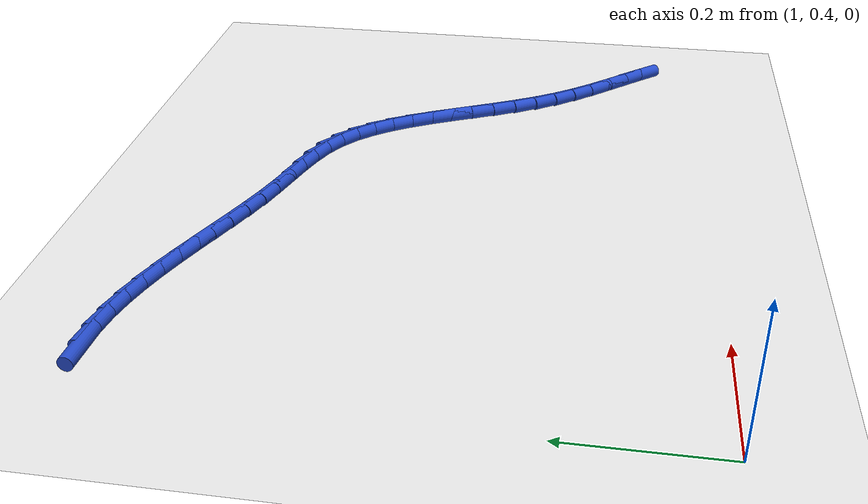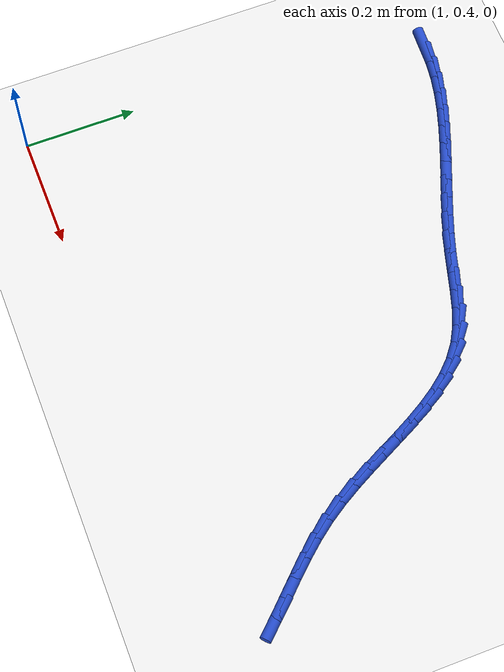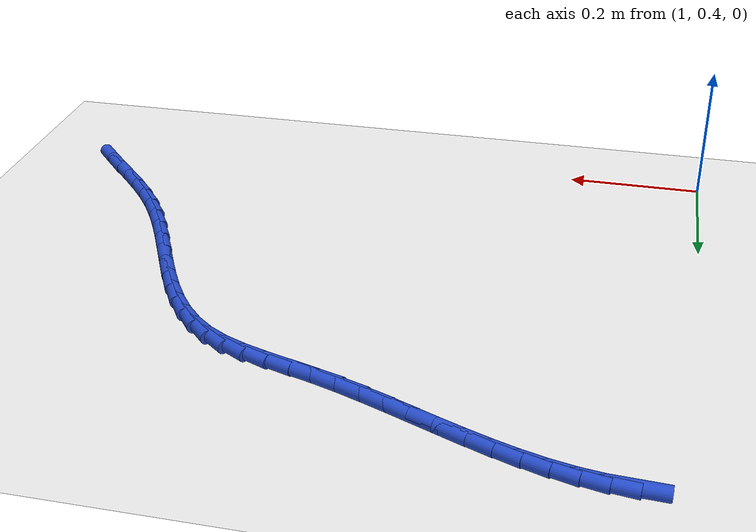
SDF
<sdf version="1.6">
 <world name="default">
  <model name="ground_plane">
   <static>1</static>
   <link name="link">
    <collision name="collision">
     <geometry><plane><normal>0 0 1</normal><size>100 100</size></plane></geometry>
     <surface><friction><ode><mu>100</mu><mu2>50</mu2></ode></friction></surface>
    </collision>
    <visual name="visual">
     <cast_shadows>0</cast_shadows>
     <geometry><plane><normal>0 0 1</normal><size>100 100</size></plane></geometry>
     <material>
      <script><uri>file://media/materials/scripts/gazebo.material</uri><name>Gazebo/WhiteGlow</name></script>
     </material>
    </visual>
   </link>
  </model>
  <model name="line">
   <link name="link_49">
    <pose>1.0704174960974069 1.1385288633667494 0.01 0 1.57 -0.05053503857043685</pose>
    <collision name="collision">
     <geometry><cylinder><radius>0.01</radius><length>0.08</length></cylinder></geometry>
    </collision>
    <visual name="visual">
     <material>
      <script><name>Gazebo/Blue</name><uri>file://media/materials/scripts/gazebo.material</uri></script>
     </material>
     <geometry><cylinder><radius>0.01</radius><length>0.08</length></cylinder></geometry>
    </visual>
   </link>
   <link name="link_50">
    <pose>1.102712548076787 1.136895440959878 0.01 0 1.57 -0.13837617292794638</pose>
    <collision name="collision">
     <geometry><cylinder><radius>0.01</radius><length>0.08</length></cylinder></geometry>
    </collision>
    <visual name="visual">
     <material>
      <script><name>Gazebo/Blue</name><uri>file://media/materials/scripts/gazebo.material</uri></script>
     </material>
     <geometry><cylinder><radius>0.01</radius><length>0.08</length></cylinder></geometry>
    </visual>
   </link>
   <link name="link_51">
    <pose>1.1349899159255852 1.1324002946646168 0.01 0 1.57 -0.21233384524929502</pose>
    <collision name="collision">
     <geometry><cylinder><radius>0.01</radius><length>0.08</length></cylinder></geometry>
    </collision>
    <visual name="visual">
     <material>
      <script><name>Gazebo/Blue</name><uri>file://media/materials/scripts/gazebo.material</uri></script>
     </material>
     <geometry><cylinder><radius>0.01</radius><length>0.08</length></cylinder></geometry>
    </visual>
   </link>
   <link name="link_52">
    <pose>1.1672833852256324 1.1254383544195048 0.01 0 1.57 -0.27236821823847374</pose>
    <collision name="collision">
     <geometry><cylinder><radius>0.01</radius><length>0.08</length></cylinder></geometry>
    </collision>
    <visual name="visual">
     <material>
      <script><name>Gazebo/Blue</name><uri>file://media/materials/scripts/gazebo.material</uri></script>
     </material>
     <geometry><cylinder><radius>0.01</radius><length>0.08</length></cylinder></geometry>
    </visual>
   </link>
   <link name="link_53">
    <pose>1.1996267415587614 1.1164045501630848 0.01 0 1.57 -0.3190205956463899</pose>
    <collision name="collision">
     <geometry><cylinder><radius>0.01</radius><length>0.08</length></cylinder></geometry>
    </collision>
    <visual name="visual">
     <material>
      <script><name>Gazebo/Blue</name><uri>file://media/materials/scripts/gazebo.material</uri></script>
     </material>
     <geometry><cylinder><radius>0.01</radius><length>0.08</length></cylinder></geometry>
    </visual>
   </link>
   <link name="link_54">
    <pose>1.2320537705068022 1.1056938118338953 0.01 0 1.57 -0.35306257519951395</pose>
    <collision name="collision">
     <geometry><cylinder><radius>0.01</radius><length>0.08</length></cylinder></geometry>
    </collision>
    <visual name="visual">
     <material>
      <script><name>Gazebo/Blue</name><uri>file://media/materials/scripts/gazebo.material</uri></script>
     </material>
     <geometry><cylinder><radius>0.01</radius><length>0.08</length></cylinder></geometry>
    </visual>
   </link>
   <link name="link_55">
    <pose>1.2645982576515873 1.0937010693704774 0.01 0 1.57 -0.3752623566486054</pose>
    <collision name="collision">
     <geometry><cylinder><radius>0.01</radius><length>0.08</length></cylinder></geometry>
    </collision>
    <visual name="visual">
     <material>
      <script><name>Gazebo/Blue</name><uri>file://media/materials/scripts/gazebo.material</uri></script>
     </material>
     <geometry><cylinder><radius>0.01</radius><length>0.08</length></cylinder></geometry>
    </visual>
   </link>
   <link name="link_56">
    <pose>1.2972939885749484 1.080821252711372 0.01 0 1.57 -0.38625204810038843</pose>
    <collision name="collision">
     <geometry><cylinder><radius>0.01</radius><length>0.08</length></cylinder></geometry>
    </collision>
    <visual name="visual">
     <material>
      <script><name>Gazebo/Blue</name><uri>file://media/materials/scripts/gazebo.material</uri></script>
     </material>
     <geometry><cylinder><radius>0.01</radius><length>0.08</length></cylinder></geometry>
    </visual>
   </link>
   <link name="link_57">
    <pose>1.3301747488587168 1.0674492917951197 0.01 0 1.57 -0.38646529747565467</pose>
    <collision name="collision">
     <geometry><cylinder><radius>0.01</radius><length>0.08</length></cylinder></geometry>
    </collision>
    <visual name="visual">
     <material>
      <script><name>Gazebo/Blue</name><uri>file://media/materials/scripts/gazebo.material</uri></script>
     </material>
     <geometry><cylinder><radius>0.01</radius><length>0.08</length></cylinder></geometry>
    </visual>
   </link>
   <link name="link_58">
    <pose>1.3632743240847245 1.0539801165602611 0.01 0 1.57 -0.3761198865224219</pose>
    <collision name="collision">
     <geometry><cylinder><radius>0.01</radius><length>0.08</length></cylinder></geometry>
    </collision>
    <visual name="visual">
     <material>
      <script><name>Gazebo/Blue</name><uri>file://media/materials/scripts/gazebo.material</uri></script>
     </material>
     <geometry><cylinder><radius>0.01</radius><length>0.08</length></cylinder></geometry>
    </visual>
   </link>
   <link name="link_59">
    <pose>1.3966264998348028 1.0408086569453363 0.01 0 1.57 -0.3552306718810577</pose>
    <collision name="collision">
     <geometry><cylinder><radius>0.01</radius><length>0.08</length></cylinder></geometry>
    </collision>
    <visual name="visual">
     <material>
      <script><name>Gazebo/Blue</name><uri>file://media/materials/scripts/gazebo.material</uri></script>
     </material>
     <geometry><cylinder><radius>0.01</radius><length>0.08</length></cylinder></geometry>
    </visual>
   </link>
   <link name="link_60">
    <pose>1.4302650616907833 1.028329842888886 0.01 0 1.57 -0.3236485568408975</pose>
    <collision name="collision">
     <geometry><cylinder><radius>0.01</radius><length>0.08</length></cylinder></geometry>
    </collision>
    <visual name="visual">
     <material>
      <script><name>Gazebo/Blue</name><uri>file://media/materials/scripts/gazebo.material</uri></script>
     </material>
     <geometry><cylinder><radius>0.01</radius><length>0.08</length></cylinder></geometry>
    </visual>
   </link>
   <link name="link_61">
    <pose>1.4642237952344979 1.0169386043294513 0.01 0 1.57 -0.2879294950451845</pose>
    <collision name="collision">
     <geometry><cylinder><radius>0.01</radius><length>0.08</length></cylinder></geometry>
    </collision>
    <visual name="visual">
     <material>
      <script><name>Gazebo/Blue</name><uri>file://media/materials/scripts/gazebo.material</uri></script>
     </material>
     <geometry><cylinder><radius>0.01</radius><length>0.08</length></cylinder></geometry>
    </visual>
   </link>
   <link name="link_62">
    <pose>1.4984207860390664 1.0068108477480653 0.01 0 1.57 -0.2805081604168257</pose>
    <collision name="collision">
     <geometry><cylinder><radius>0.01</radius><length>0.08</length></cylinder></geometry>
    </collision>
    <visual name="visual">
     <material>
      <script><name>Gazebo/Blue</name><uri>file://media/materials/scripts/gazebo.material</uri></script>
     </material>
     <geometry><cylinder><radius>0.01</radius><length>0.08</length></cylinder></geometry>
    </visual>
   </link>
   <link name="link_63">
    <pose>1.5322198276847405 0.9970731888772296 0.01 0 1.57 -0.3125689429357546</pose>
    <collision name="collision">
     <geometry><cylinder><radius>0.01</radius><length>0.08</length></cylinder></geometry>
    </collision>
    <visual name="visual">
     <material>
      <script><name>Gazebo/Blue</name><uri>file://media/materials/scripts/gazebo.material</uri></script>
     </material>
     <geometry><cylinder><radius>0.01</radius><length>0.08</length></cylinder></geometry>
    </visual>
   </link>
   <link name="link_64">
    <pose>1.5648189188030504 0.9865383888239327 0.01 0 1.57 -0.3883813724338014</pose>
    <collision name="collision">
     <geometry><cylinder><radius>0.01</radius><length>0.08</length></cylinder></geometry>
    </collision>
    <visual name="visual">
     <material>
      <script><name>Gazebo/Blue</name><uri>file://media/materials/scripts/gazebo.material</uri></script>
     </material>
     <geometry><cylinder><radius>0.01</radius><length>0.08</length></cylinder></geometry>
    </visual>
   </link>
   <link name="link_65">
    <pose>1.5954160279251 0.9740191517141847 0.01 0 1.57 -0.5135361329263815</pose>
    <collision name="collision">
     <geometry><cylinder><radius>0.01</radius><length>0.08</length></cylinder></geometry>
    </collision>
    <visual name="visual">
     <material>
      <script><name>Gazebo/Blue</name><uri>file://media/materials/scripts/gazebo.material</uri></script>
     </material>
     <geometry><cylinder><radius>0.01</radius><length>0.08</length></cylinder></geometry>
    </visual>
   </link>
   <link name="link_66">
    <pose>1.6232173971291122 0.9583388886276176 0.01 0 1.57 -0.6657670510616024</pose>
    <collision name="collision">
     <geometry><cylinder><radius>0.01</radius><length>0.08</length></cylinder></geometry>
    </collision>
    <visual name="visual">
     <material>
      <script><name>Gazebo/Blue</name><uri>file://media/materials/scripts/gazebo.material</uri></script>
     </material>
     <geometry><cylinder><radius>0.01</radius><length>0.08</length></cylinder></geometry>
    </visual>
   </link>
   <link name="link_67">
    <pose>1.647911200652811 0.9389446881555725 0.01 0 1.57 -0.8008666092819897</pose>
    <collision name="collision">
     <geometry><cylinder><radius>0.01</radius><length>0.08</length></cylinder></geometry>
    </collision>
    <visual name="visual">
     <material>
      <script><name>Gazebo/Blue</name><uri>file://media/materials/scripts/gazebo.material</uri></script>
     </material>
     <geometry><cylinder><radius>0.01</radius><length>0.08</length></cylinder></geometry>
    </visual>
   </link>
   <link name="link_68">
    <pose>1.6699243980751086 0.9162397149556899 0.01 0 1.57 -0.910625793663148</pose>
    <collision name="collision">
     <geometry><cylinder><radius>0.01</radius><length>0.08</length></cylinder></geometry>
    </collision>
    <visual name="visual">
     <material>
      <script><name>Gazebo/Blue</name><uri>file://media/materials/scripts/gazebo.material</uri></script>
     </material>
     <geometry><cylinder><radius>0.01</radius><length>0.08</length></cylinder></geometry>
    </visual>
   </link>
   <link name="link_69">
    <pose>1.6897465504902713 0.8907081474892259 0.01 0 1.57 -0.994356056560531</pose>
    <collision name="collision">
     <geometry><cylinder><radius>0.01</radius><length>0.08</length></cylinder></geometry>
    </collision>
    <visual name="visual">
     <material>
      <script><name>Gazebo/Blue</name><uri>file://media/materials/scripts/gazebo.material</uri></script>
     </material>
     <geometry><cylinder><radius>0.01</radius><length>0.08</length></cylinder></geometry>
    </visual>
   </link>
   <link name="link_70">
    <pose>1.707867218992567 0.8628341642174367 0.01 0 1.57 -1.0537087445718456</pose>
    <collision name="collision">
     <geometry><cylinder><radius>0.01</radius><length>0.08</length></cylinder></geometry>
    </collision>
    <visual name="visual">
     <material>
      <script><name>Gazebo/Blue</name><uri>file://media/materials/scripts/gazebo.material</uri></script>
     </material>
     <geometry><cylinder><radius>0.01</radius><length>0.08</length></cylinder></geometry>
    </visual>
   </link>
   <link name="link_71">
    <pose>1.7247759646762622 0.8331019436015784 0.01 0 1.57 -1.0909957159820505</pose>
    <collision name="collision">
     <geometry><cylinder><radius>0.01</radius><length>0.08</length></cylinder></geometry>
    </collision>
    <visual name="visual">
     <material>
      <script><name>Gazebo/Blue</name><uri>file://media/materials/scripts/gazebo.material</uri></script>
     </material>
     <geometry><cylinder><radius>0.01</radius><length>0.08</length></cylinder></geometry>
    </visual>
   </link>
   <link name="link_72">
    <pose>1.7409623486356243 0.8019956641029067 0.01 0 1.57 -1.1082618858408568</pose>
    <collision name="collision">
     <geometry><cylinder><radius>0.01</radius><length>0.08</length></cylinder></geometry>
    </collision>
    <visual name="visual">
     <material>
      <script><name>Gazebo/Blue</name><uri>file://media/materials/scripts/gazebo.material</uri></script>
     </material>
     <geometry><cylinder><radius>0.01</radius><length>0.08</length></cylinder></geometry>
    </visual>
   </link>
   <link name="link_73">
    <pose>1.7569159319649201 0.769999504182678 0.01 0 1.57 -1.1069163420266026</pose>
    <collision name="collision">
     <geometry><cylinder><radius>0.01</radius><length>0.08</length></cylinder></geometry>
    </collision>
    <visual name="visual">
     <material>
      <script><name>Gazebo/Blue</name><uri>file://media/materials/scripts/gazebo.material</uri></script>
     </material>
     <geometry><cylinder><radius>0.01</radius><length>0.08</length></cylinder></geometry>
    </visual>
   </link>
   <link name="link_74">
    <pose>1.773126275758417 0.7375976423021485 0.01 0 1.57 -1.0876673790786258</pose>
    <collision name="collision">
     <geometry><cylinder><radius>0.01</radius><length>0.08</length></cylinder></geometry>
    </collision>
    <visual name="visual">
     <material>
      <script><name>Gazebo/Blue</name><uri>file://media/materials/scripts/gazebo.material</uri></script>
     </material>
     <geometry><cylinder><radius>0.01</radius><length>0.08</length></cylinder></geometry>
    </visual>
   </link>
   <link name="link_75">
    <pose>1.7900829411103814 0.7052742569225744 0.01 0 1.57 -1.0506169387218292</pose>
    <collision name="collision">
     <geometry><cylinder><radius>0.01</radius><length>0.08</length></cylinder></geometry>
    </collision>
    <visual name="visual">
     <material>
      <script><name>Gazebo/Blue</name><uri>file://media/materials/scripts/gazebo.material</uri></script>
     </material>
     <geometry><cylinder><radius>0.01</radius><length>0.08</length></cylinder></geometry>
    </visual>
   </link>
   <link name="link_76">
    <pose>1.808275489115081 0.6735135265052115 0.01 0 1.57 -0.9954756333079731</pose>
    <collision name="collision">
     <geometry><cylinder><radius>0.01</radius><length>0.08</length></cylinder></geometry>
    </collision>
    <visual name="visual">
     <material>
      <script><name>Gazebo/Blue</name><uri>file://media/materials/scripts/gazebo.material</uri></script>
     </material>
     <geometry><cylinder><radius>0.01</radius><length>0.08</length></cylinder></geometry>
    </visual>
   </link>
   <link name="link_77">
    <pose>1.828193480866782 0.6427996295113163 0.01 0 1.57 -0.9256164374546936</pose>
    <collision name="collision">
     <geometry><cylinder><radius>0.01</radius><length>0.08</length></cylinder></geometry>
    </collision>
    <visual name="visual">
     <material>
      <script><name>Gazebo/Blue</name><uri>file://media/materials/scripts/gazebo.material</uri></script>
     </material>
     <geometry><cylinder><radius>0.01</radius><length>0.08</length></cylinder></geometry>
    </visual>
   </link>
   <link name="link_78">
    <pose>1.8502143167117646 0.6135409751115511 0.01 0 1.57 -0.8658454601131559</pose>
    <collision name="collision">
     <geometry><cylinder><radius>0.01</radius><length>0.08</length></cylinder></geometry>
    </collision>
    <visual name="visual">
     <material>
      <script><name>Gazebo/Blue</name><uri>file://media/materials/scripts/gazebo.material</uri></script>
     </material>
     <geometry><cylinder><radius>0.01</radius><length>0.08</length></cylinder></geometry>
    </visual>
   </link>
   <link name="link_79">
    <pose>1.8739573275378303 0.5856338647551159 0.01 0 1.57 -0.8260537029442379</pose>
    <collision name="collision">
     <geometry><cylinder><radius>0.01</radius><length>0.08</length></cylinder></geometry>
    </collision>
    <visual name="visual">
     <material>
      <script><name>Gazebo/Blue</name><uri>file://media/materials/scripts/gazebo.material</uri></script>
     </material>
     <geometry><cylinder><radius>0.01</radius><length>0.08</length></cylinder></geometry>
    </visual>
   </link>
   <link name="link_80">
    <pose>1.898727951677734 0.5587625523019674 0.01 0 1.57 -0.80586695330066</pose>
    <collision name="collision">
     <geometry><cylinder><radius>0.01</radius><length>0.08</length></cylinder></geometry>
    </collision>
    <visual name="visual">
     <material>
      <script><name>Gazebo/Blue</name><uri>file://media/materials/scripts/gazebo.material</uri></script>
     </material>
     <geometry><cylinder><radius>0.01</radius><length>0.08</length></cylinder></geometry>
    </visual>
   </link>
   <link name="link_81">
    <pose>1.9238306239085943 0.5326106136681296 0.01 0 1.57 -0.8053969014875142</pose>
    <collision name="collision">
     <geometry><cylinder><radius>0.01</radius><length>0.08</length></cylinder></geometry>
    </collision>
    <visual name="visual">
     <material>
      <script><name>Gazebo/Blue</name><uri>file://media/materials/scripts/gazebo.material</uri></script>
     </material>
     <geometry><cylinder><radius>0.01</radius><length>0.08</length></cylinder></geometry>
    </visual>
   </link>
   <link name="link_82">
    <pose>1.9485697790075325 0.506861624769627 0.01 0 1.57 -0.8255526647911544</pose>
    <collision name="collision">
     <geometry><cylinder><radius>0.01</radius><length>0.08</length></cylinder></geometry>
    </collision>
    <visual name="visual">
     <material>
      <script><name>Gazebo/Blue</name><uri>file://media/materials/scripts/gazebo.material</uri></script>
     </material>
     <geometry><cylinder><radius>0.01</radius><length>0.08</length></cylinder></geometry>
    </visual>
   </link>
  </model>
 </world>
</sdf>
